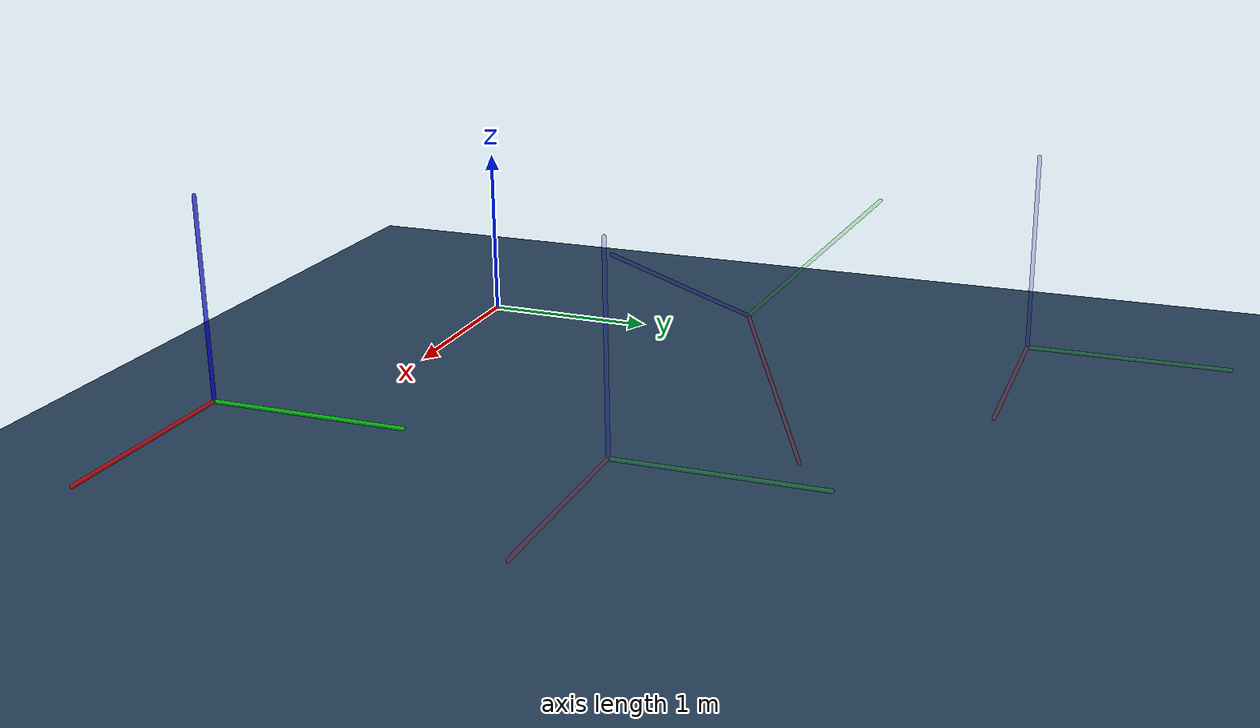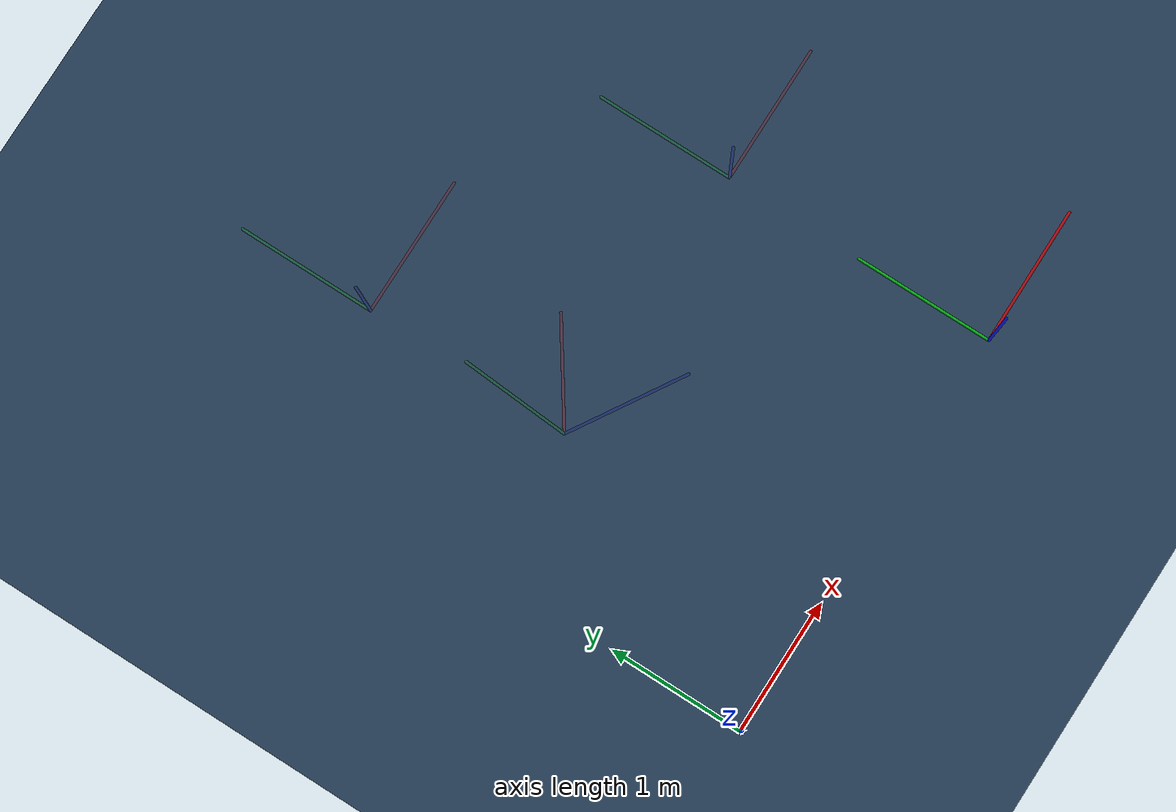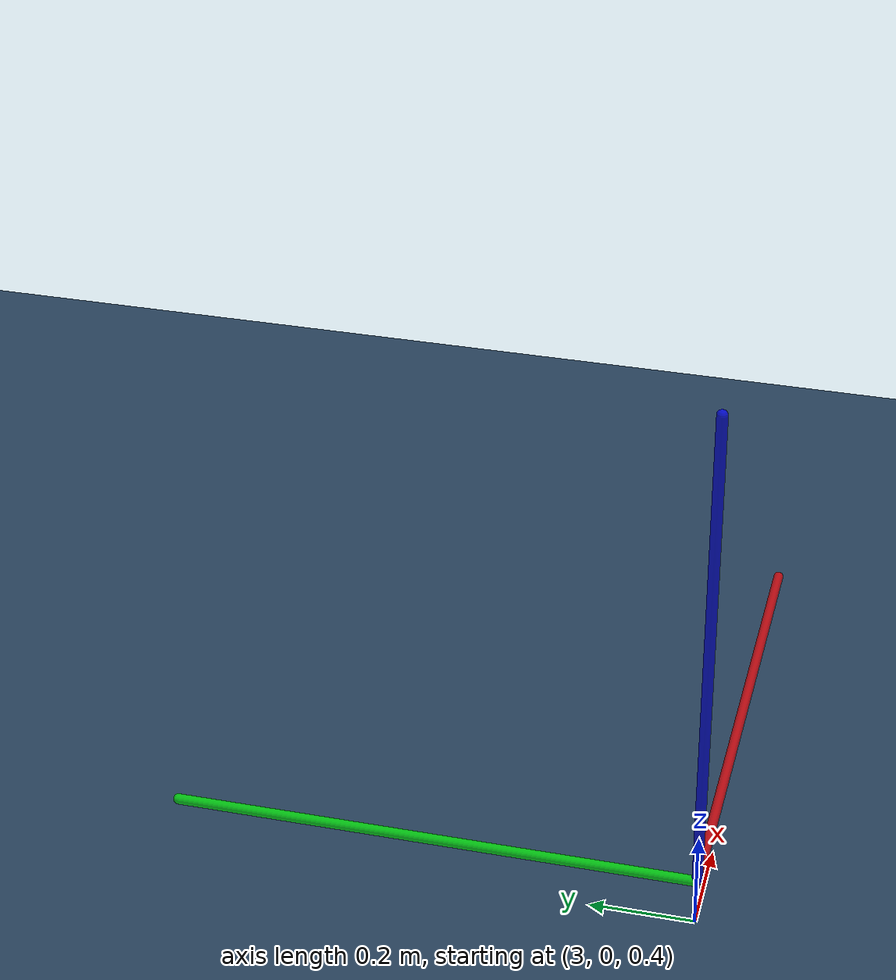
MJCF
<mujoco model="foucault_pendulum">

  <visual>
    <headlight ambient="0.6 0.6 0.6" diffuse="0.8 0.8 0.8" specular="0.3 0.3 0.3"/>
  </visual>

  <asset>
    <texture name="grid" type="2d" builtin="checker" rgb1="0.1 0.2 0.3" rgb2="0.2 0.3 0.4"
             width="300" height="300" mark="cross" markrgb="1 1 1"/>
    <material name="grid" texture="grid" texrepeat="8 8" reflectance="0.2"/>
  </asset>

  <worldbody>
    <!-- Ground plane with grid -->
    <geom name="ground" type="plane" size="10 10 0.1" material="grid" pos="0 0 -0.1"/>

    <body name="reference_frame1" pos="3 0 0.5">
      <geom name="x_axis1" type="capsule" fromto="0 0 0 1 0 0" size="0.01" rgba="1 0 0 0.7"/>
      <geom name="y_axis1" type="capsule" fromto="0 0 0 0 1 0" size="0.01" rgba="0 1 0 0.7"/>
      <geom name="z_axis1" type="capsule" fromto="0 0 0 0 0 1" size="0.01" rgba="0 0 1 0.7"/>
    </body>

    <!-- Reference frame markers to show Earth's rotation effect -->
    <body name="reference_frame2" pos="3 2 0.5">
      <geom name="x_axis2" type="capsule" fromto="0 0 0 1 0 0" size="0.01" rgba="1 0 0 0.2"/>
      <geom name="y_axis2" type="capsule" fromto="0 0 0 0 1 0" size="0.01" rgba="0 1 0 0.2"/>
      <geom name="z_axis2" type="capsule" fromto="0 0 0 0 0 1" size="0.01" rgba="0 0 1 0.2"/>
    </body>

      <body name="reference_frame3" pos="1 2 0.5" euler="45 45 0">
      <geom name="x_axis3" type="capsule" fromto="0 0 0 1 0 0" size="0.01" rgba="1 0 0 0.2"/>
      <geom name="y_axis3" type="capsule" fromto="0 0 0 0 1 0" size="0.01" rgba="0 1 0 0.2"/>
      <geom name="z_axis3" type="capsule" fromto="0 0 0 0 0 1" size="0.01" rgba="0 0 1 0.2"/>
       </body>
       <body name="reference_frame4" pos="1 3.5 0.5" euler="0 0 0">
      <geom name="x_axis4" type="capsule" fromto="0 0 0 1 0 0" size="0.01" rgba="1 0 0 0.2"/>
      <geom name="y_axis4" type="capsule" fromto="0 0 0 0 1 0" size="0.01" rgba="0 1 0 0.2"/>
      <geom name="z_axis4" type="capsule" fromto="0 0 0 0 0 1" size="0.01" rgba="0 0 1 0.2"/>

    </body>

  </worldbody>

</mujoco>
